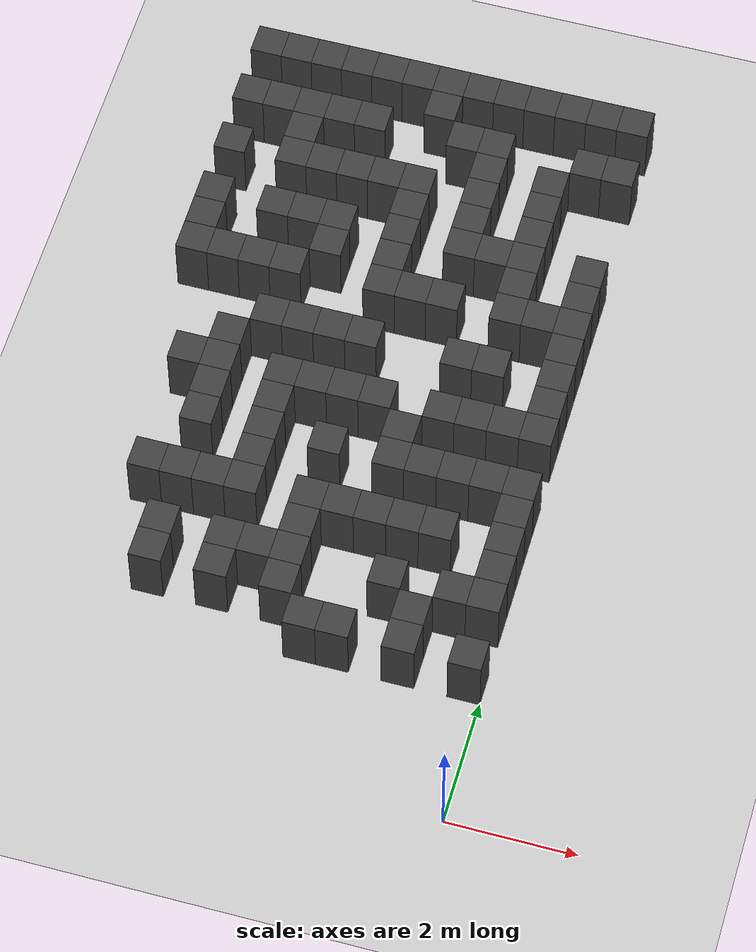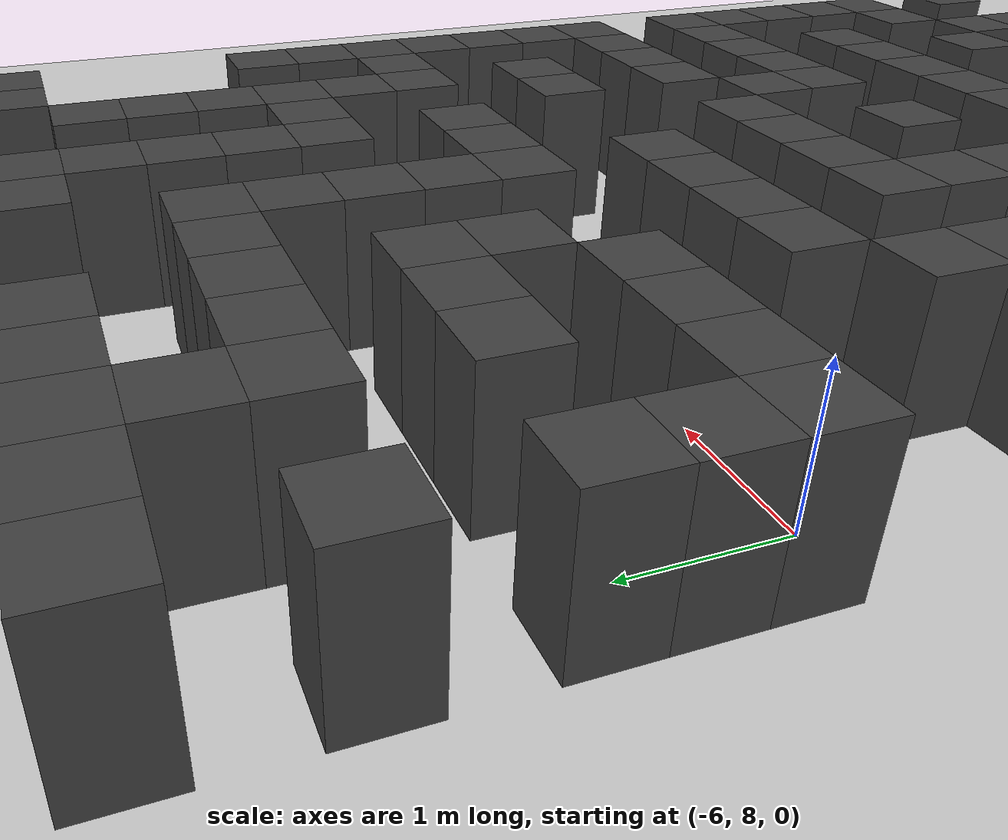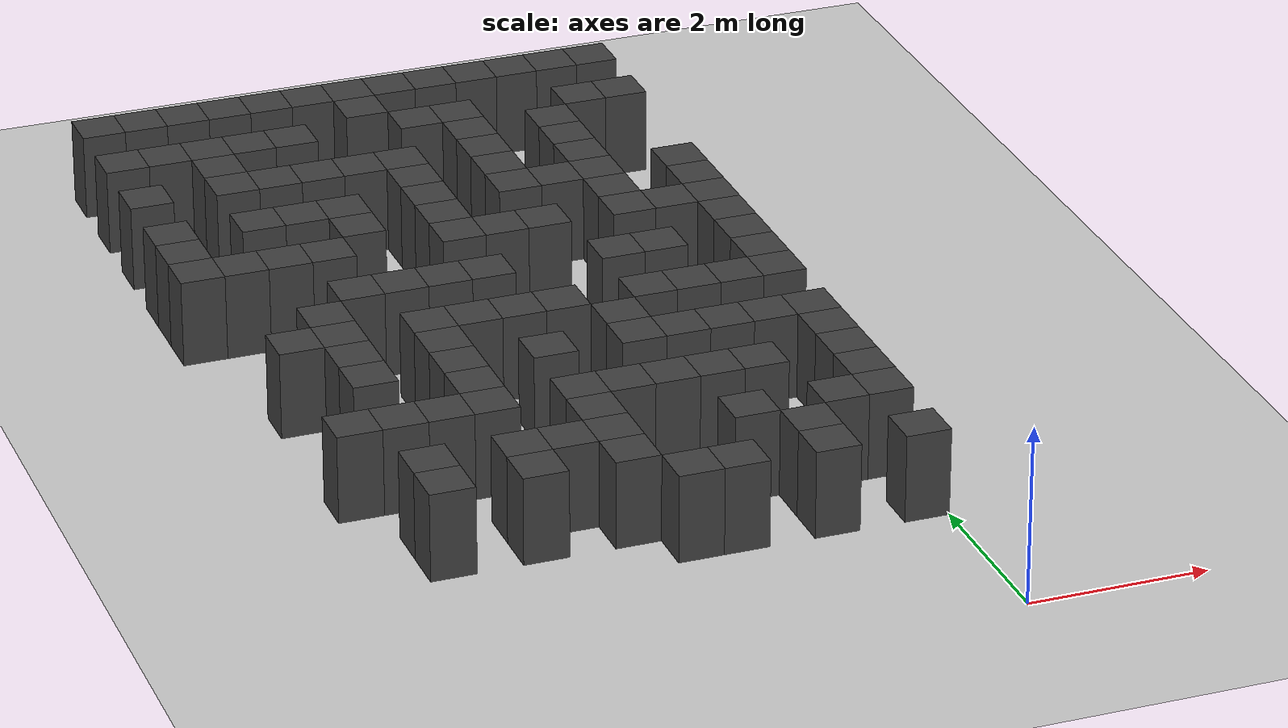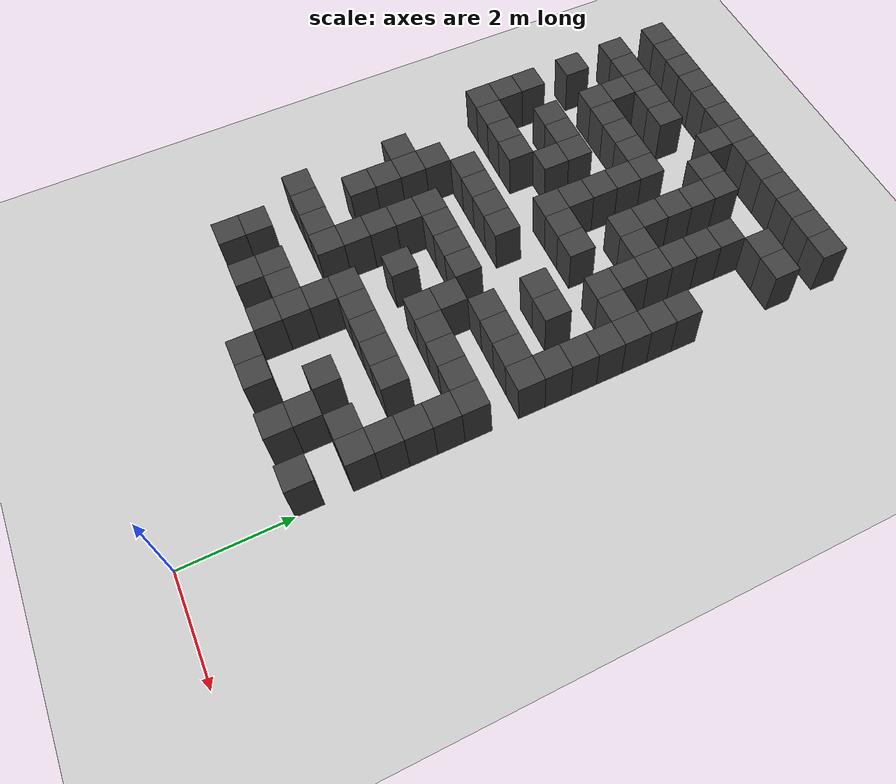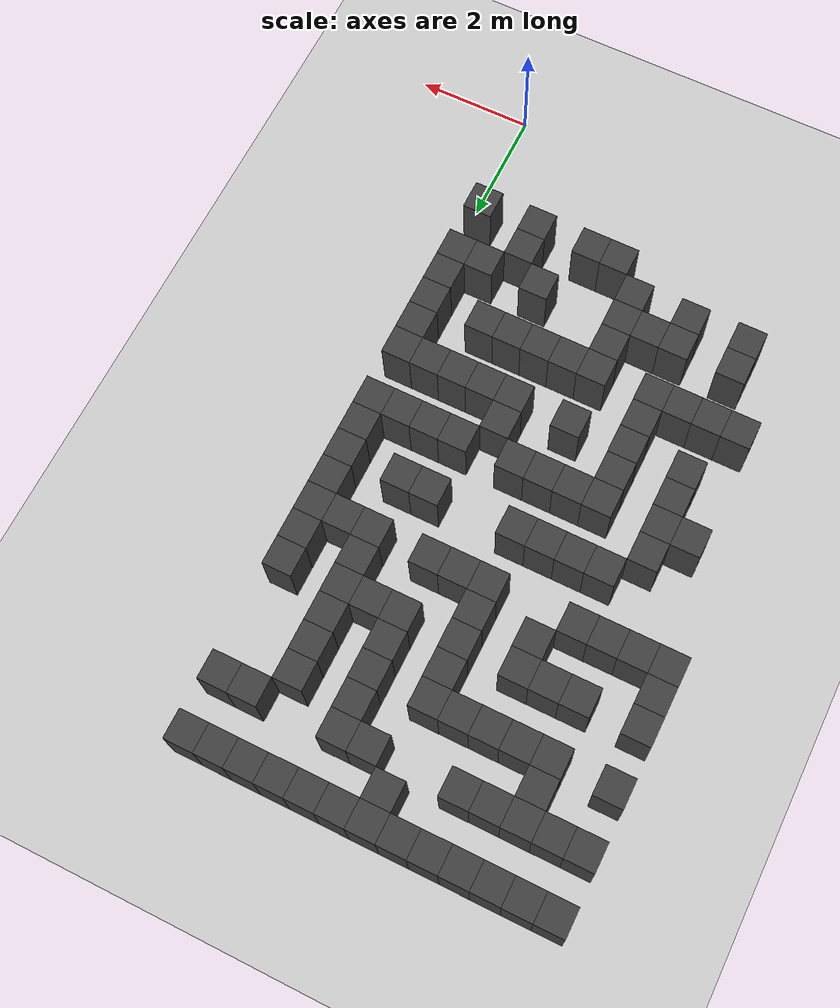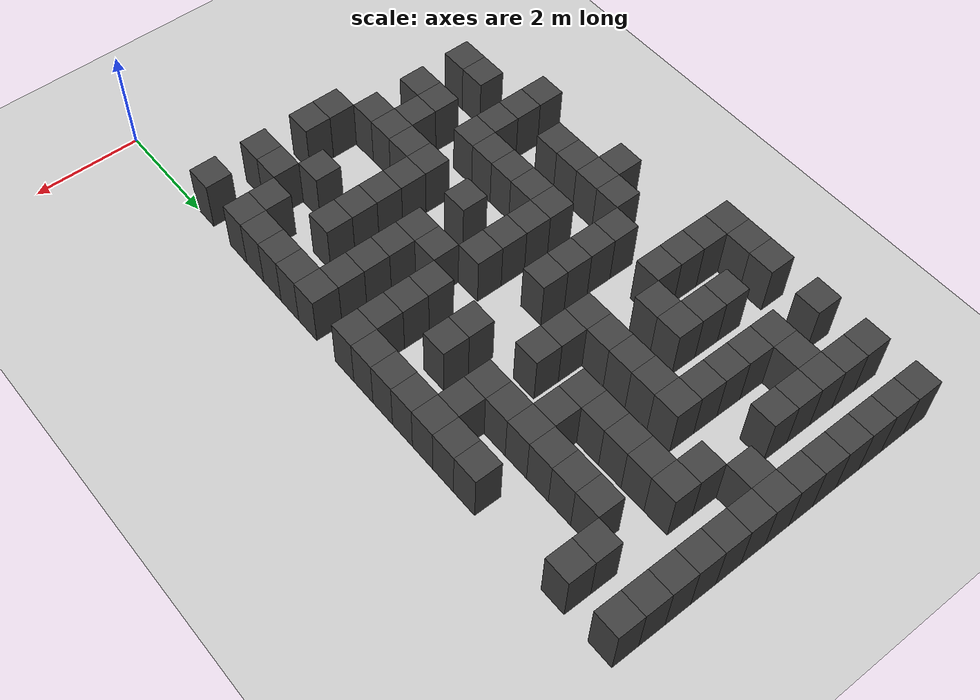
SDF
<sdf version="1.7">
 <world name="map_15497">
  <model name="ground_plane">
   <static>true</static>
   <link name="link">
    <collision name="collision">
     <geometry><plane><normal>0 0 1</normal><size>200 200</size></plane></geometry>
    </collision>
    <visual name="visual">
     <geometry><plane><normal>0 0 1</normal><size>200 200</size></plane></geometry>
     <material><ambient>0.8 0.8 0.8 1</ambient><diffuse>0.8 0.8 0.8 1</diffuse></material>
    </visual>
   </link>
  </model>
  <model name="maze_environment">
   <static>true</static>
   <link name="wall_12">
    <pose>-6.250 12.250 0.500 0 0 0</pose>
    <collision name="col"><geometry><box><size>0.5 0.5 1.0</size></box></geometry></collision>
    <visual name="vis">
     <geometry><box><size>0.5 0.5 1.0</size></box></geometry>
     <material><ambient>0.15 0.15 0.15 1</ambient><diffuse>0.25 0.25 0.25 1</diffuse></material>
    </visual>
   </link>
   <link name="wall_13">
    <pose>-5.750 12.250 0.500 0 0 0</pose>
    <collision name="col"><geometry><box><size>0.5 0.5 1.0</size></box></geometry></collision>
    <visual name="vis">
     <geometry><box><size>0.5 0.5 1.0</size></box></geometry>
     <material><ambient>0.15 0.15 0.15 1</ambient><diffuse>0.25 0.25 0.25 1</diffuse></material>
    </visual>
   </link>
   <link name="wall_14">
    <pose>-5.250 12.250 0.500 0 0 0</pose>
    <collision name="col"><geometry><box><size>0.5 0.5 1.0</size></box></geometry></collision>
    <visual name="vis">
     <geometry><box><size>0.5 0.5 1.0</size></box></geometry>
     <material><ambient>0.15 0.15 0.15 1</ambient><diffuse>0.25 0.25 0.25 1</diffuse></material>
    </visual>
   </link>
   <link name="wall_15">
    <pose>-4.750 12.250 0.500 0 0 0</pose>
    <collision name="col"><geometry><box><size>0.5 0.5 1.0</size></box></geometry></collision>
    <visual name="vis">
     <geometry><box><size>0.5 0.5 1.0</size></box></geometry>
     <material><ambient>0.15 0.15 0.15 1</ambient><diffuse>0.25 0.25 0.25 1</diffuse></material>
    </visual>
   </link>
   <link name="wall_16">
    <pose>-4.250 12.250 0.500 0 0 0</pose>
    <collision name="col"><geometry><box><size>0.5 0.5 1.0</size></box></geometry></collision>
    <visual name="vis">
     <geometry><box><size>0.5 0.5 1.0</size></box></geometry>
     <material><ambient>0.15 0.15 0.15 1</ambient><diffuse>0.25 0.25 0.25 1</diffuse></material>
    </visual>
   </link>
   <link name="wall_17">
    <pose>-3.750 12.250 0.500 0 0 0</pose>
    <collision name="col"><geometry><box><size>0.5 0.5 1.0</size></box></geometry></collision>
    <visual name="vis">
     <geometry><box><size>0.5 0.5 1.0</size></box></geometry>
     <material><ambient>0.15 0.15 0.15 1</ambient><diffuse>0.25 0.25 0.25 1</diffuse></material>
    </visual>
   </link>
   <link name="wall_18">
    <pose>-3.250 12.250 0.500 0 0 0</pose>
    <collision name="col"><geometry><box><size>0.5 0.5 1.0</size></box></geometry></collision>
    <visual name="vis">
     <geometry><box><size>0.5 0.5 1.0</size></box></geometry>
     <material><ambient>0.15 0.15 0.15 1</ambient><diffuse>0.25 0.25 0.25 1</diffuse></material>
    </visual>
   </link>
   <link name="wall_19">
    <pose>-2.750 12.250 0.500 0 0 0</pose>
    <collision name="col"><geometry><box><size>0.5 0.5 1.0</size></box></geometry></collision>
    <visual name="vis">
     <geometry><box><size>0.5 0.5 1.0</size></box></geometry>
     <material><ambient>0.15 0.15 0.15 1</ambient><diffuse>0.25 0.25 0.25 1</diffuse></material>
    </visual>
   </link>
   <link name="wall_20">
    <pose>-2.250 12.250 0.500 0 0 0</pose>
    <collision name="col"><geometry><box><size>0.5 0.5 1.0</size></box></geometry></collision>
    <visual name="vis">
     <geometry><box><size>0.5 0.5 1.0</size></box></geometry>
     <material><ambient>0.15 0.15 0.15 1</ambient><diffuse>0.25 0.25 0.25 1</diffuse></material>
    </visual>
   </link>
   <link name="wall_21">
    <pose>-1.750 12.250 0.500 0 0 0</pose>
    <collision name="col"><geometry><box><size>0.5 0.5 1.0</size></box></geometry></collision>
    <visual name="vis">
     <geometry><box><size>0.5 0.5 1.0</size></box></geometry>
     <material><ambient>0.15 0.15 0.15 1</ambient><diffuse>0.25 0.25 0.25 1</diffuse></material>
    </visual>
   </link>
   <link name="wall_22">
    <pose>-1.250 12.250 0.500 0 0 0</pose>
    <collision name="col"><geometry><box><size>0.5 0.5 1.0</size></box></geometry></collision>
    <visual name="vis">
     <geometry><box><size>0.5 0.5 1.0</size></box></geometry>
     <material><ambient>0.15 0.15 0.15 1</ambient><diffuse>0.25 0.25 0.25 1</diffuse></material>
    </visual>
   </link>
   <link name="wall_23">
    <pose>-0.750 12.250 0.500 0 0 0</pose>
    <collision name="col"><geometry><box><size>0.5 0.5 1.0</size></box></geometry></collision>
    <visual name="vis">
     <geometry><box><size>0.5 0.5 1.0</size></box></geometry>
     <material><ambient>0.15 0.15 0.15 1</ambient><diffuse>0.25 0.25 0.25 1</diffuse></material>
    </visual>
   </link>
   <link name="wall_24">
    <pose>-0.250 12.250 0.500 0 0 0</pose>
    <collision name="col"><geometry><box><size>0.5 0.5 1.0</size></box></geometry></collision>
    <visual name="vis">
     <geometry><box><size>0.5 0.5 1.0</size></box></geometry>
     <material><ambient>0.15 0.15 0.15 1</ambient><diffuse>0.25 0.25 0.25 1</diffuse></material>
    </visual>
   </link>
   <link name="wall_53">
    <pose>-3.250 11.750 0.500 0 0 0</pose>
    <collision name="col"><geometry><box><size>0.5 0.5 1.0</size></box></geometry></collision>
    <visual name="vis">
     <geometry><box><size>0.5 0.5 1.0</size></box></geometry>
     <material><ambient>0.15 0.15 0.15 1</ambient><diffuse>0.25 0.25 0.25 1</diffuse></material>
    </visual>
   </link>
   <link name="wall_66">
    <pose>-6.250 11.250 0.500 0 0 0</pose>
    <collision name="col"><geometry><box><size>0.5 0.5 1.0</size></box></geometry></collision>
    <visual name="vis">
     <geometry><box><size>0.5 0.5 1.0</size></box></geometry>
     <material><ambient>0.15 0.15 0.15 1</ambient><diffuse>0.25 0.25 0.25 1</diffuse></material>
    </visual>
   </link>
   <link name="wall_67">
    <pose>-5.750 11.250 0.500 0 0 0</pose>
    <collision name="col"><geometry><box><size>0.5 0.5 1.0</size></box></geometry></collision>
    <visual name="vis">
     <geometry><box><size>0.5 0.5 1.0</size></box></geometry>
     <material><ambient>0.15 0.15 0.15 1</ambient><diffuse>0.25 0.25 0.25 1</diffuse></material>
    </visual>
   </link>
   <link name="wall_68">
    <pose>-5.250 11.250 0.500 0 0 0</pose>
    <collision name="col"><geometry><box><size>0.5 0.5 1.0</size></box></geometry></collision>
    <visual name="vis">
     <geometry><box><size>0.5 0.5 1.0</size></box></geometry>
     <material><ambient>0.15 0.15 0.15 1</ambient><diffuse>0.25 0.25 0.25 1</diffuse></material>
    </visual>
   </link>
   <link name="wall_69">
    <pose>-4.750 11.250 0.500 0 0 0</pose>
    <collision name="col"><geometry><box><size>0.5 0.5 1.0</size></box></geometry></collision>
    <visual name="vis">
     <geometry><box><size>0.5 0.5 1.0</size></box></geometry>
     <material><ambient>0.15 0.15 0.15 1</ambient><diffuse>0.25 0.25 0.25 1</diffuse></material>
    </visual>
   </link>
   <link name="wall_70">
    <pose>-4.250 11.250 0.500 0 0 0</pose>
    <collision name="col"><geometry><box><size>0.5 0.5 1.0</size></box></geometry></collision>
    <visual name="vis">
     <geometry><box><size>0.5 0.5 1.0</size></box></geometry>
     <material><ambient>0.15 0.15 0.15 1</ambient><diffuse>0.25 0.25 0.25 1</diffuse></material>
    </visual>
   </link>
   <link name="wall_71">
    <pose>-2.750 11.250 0.500 0 0 0</pose>
    <collision name="col"><geometry><box><size>0.5 0.5 1.0</size></box></geometry></collision>
    <visual name="vis">
     <geometry><box><size>0.5 0.5 1.0</size></box></geometry>
     <material><ambient>0.15 0.15 0.15 1</ambient><diffuse>0.25 0.25 0.25 1</diffuse></material>
    </visual>
   </link>
   <link name="wall_72">
    <pose>-2.250 11.250 0.500 0 0 0</pose>
    <collision name="col"><geometry><box><size>0.5 0.5 1.0</size></box></geometry></collision>
    <visual name="vis">
     <geometry><box><size>0.5 0.5 1.0</size></box></geometry>
     <material><ambient>0.15 0.15 0.15 1</ambient><diffuse>0.25 0.25 0.25 1</diffuse></material>
    </visual>
   </link>
   <link name="wall_73">
    <pose>-0.750 11.250 0.500 0 0 0</pose>
    <collision name="col"><geometry><box><size>0.5 0.5 1.0</size></box></geometry></collision>
    <visual name="vis">
     <geometry><box><size>0.5 0.5 1.0</size></box></geometry>
     <material><ambient>0.15 0.15 0.15 1</ambient><diffuse>0.25 0.25 0.25 1</diffuse></material>
    </visual>
   </link>
   <link name="wall_74">
    <pose>-0.250 11.250 0.500 0 0 0</pose>
    <collision name="col"><geometry><box><size>0.5 0.5 1.0</size></box></geometry></collision>
    <visual name="vis">
     <geometry><box><size>0.5 0.5 1.0</size></box></geometry>
     <material><ambient>0.15 0.15 0.15 1</ambient><diffuse>0.25 0.25 0.25 1</diffuse></material>
    </visual>
   </link>
   <link name="wall_94">
    <pose>-5.250 10.750 0.500 0 0 0</pose>
    <collision name="col"><geometry><box><size>0.5 0.5 1.0</size></box></geometry></collision>
    <visual name="vis">
     <geometry><box><size>0.5 0.5 1.0</size></box></geometry>
     <material><ambient>0.15 0.15 0.15 1</ambient><diffuse>0.25 0.25 0.25 1</diffuse></material>
    </visual>
   </link>
   <link name="wall_95">
    <pose>-2.250 10.750 0.500 0 0 0</pose>
    <collision name="col"><geometry><box><size>0.5 0.5 1.0</size></box></geometry></collision>
    <visual name="vis">
     <geometry><box><size>0.5 0.5 1.0</size></box></geometry>
     <material><ambient>0.15 0.15 0.15 1</ambient><diffuse>0.25 0.25 0.25 1</diffuse></material>
    </visual>
   </link>
   <link name="wall_96">
    <pose>-1.250 10.750 0.500 0 0 0</pose>
    <collision name="col"><geometry><box><size>0.5 0.5 1.0</size></box></geometry></collision>
    <visual name="vis">
     <geometry><box><size>0.5 0.5 1.0</size></box></geometry>
     <material><ambient>0.15 0.15 0.15 1</ambient><diffuse>0.25 0.25 0.25 1</diffuse></material>
    </visual>
   </link>
   <link name="wall_115">
    <pose>-6.250 10.250 0.500 0 0 0</pose>
    <collision name="col"><geometry><box><size>0.5 0.5 1.0</size></box></geometry></collision>
    <visual name="vis">
     <geometry><box><size>0.5 0.5 1.0</size></box></geometry>
     <material><ambient>0.15 0.15 0.15 1</ambient><diffuse>0.25 0.25 0.25 1</diffuse></material>
    </visual>
   </link>
   <link name="wall_116">
    <pose>-5.250 10.250 0.500 0 0 0</pose>
    <collision name="col"><geometry><box><size>0.5 0.5 1.0</size></box></geometry></collision>
    <visual name="vis">
     <geometry><box><size>0.5 0.5 1.0</size></box></geometry>
     <material><ambient>0.15 0.15 0.15 1</ambient><diffuse>0.25 0.25 0.25 1</diffuse></material>
    </visual>
   </link>
   <link name="wall_117">
    <pose>-4.750 10.250 0.500 0 0 0</pose>
    <collision name="col"><geometry><box><size>0.5 0.5 1.0</size></box></geometry></collision>
    <visual name="vis">
     <geometry><box><size>0.5 0.5 1.0</size></box></geometry>
     <material><ambient>0.15 0.15 0.15 1</ambient><diffuse>0.25 0.25 0.25 1</diffuse></material>
    </visual>
   </link>
   <link name="wall_118">
    <pose>-4.250 10.250 0.500 0 0 0</pose>
    <collision name="col"><geometry><box><size>0.5 0.5 1.0</size></box></geometry></collision>
    <visual name="vis">
     <geometry><box><size>0.5 0.5 1.0</size></box></geometry>
     <material><ambient>0.15 0.15 0.15 1</ambient><diffuse>0.25 0.25 0.25 1</diffuse></material>
    </visual>
   </link>
   <link name="wall_119">
    <pose>-3.750 10.250 0.500 0 0 0</pose>
    <collision name="col"><geometry><box><size>0.5 0.5 1.0</size></box></geometry></collision>
    <visual name="vis">
     <geometry><box><size>0.5 0.5 1.0</size></box></geometry>
     <material><ambient>0.15 0.15 0.15 1</ambient><diffuse>0.25 0.25 0.25 1</diffuse></material>
    </visual>
   </link>
   <link name="wall_120">
    <pose>-3.250 10.250 0.500 0 0 0</pose>
    <collision name="col"><geometry><box><size>0.5 0.5 1.0</size></box></geometry></collision>
    <visual name="vis">
     <geometry><box><size>0.5 0.5 1.0</size></box></geometry>
     <material><ambient>0.15 0.15 0.15 1</ambient><diffuse>0.25 0.25 0.25 1</diffuse></material>
    </visual>
   </link>
   <link name="wall_121">
    <pose>-2.250 10.250 0.500 0 0 0</pose>
    <collision name="col"><geometry><box><size>0.5 0.5 1.0</size></box></geometry></collision>
    <visual name="vis">
     <geometry><box><size>0.5 0.5 1.0</size></box></geometry>
     <material><ambient>0.15 0.15 0.15 1</ambient><diffuse>0.25 0.25 0.25 1</diffuse></material>
    </visual>
   </link>
   <link name="wall_122">
    <pose>-1.250 10.250 0.500 0 0 0</pose>
    <collision name="col"><geometry><box><size>0.5 0.5 1.0</size></box></geometry></collision>
    <visual name="vis">
     <geometry><box><size>0.5 0.5 1.0</size></box></geometry>
     <material><ambient>0.15 0.15 0.15 1</ambient><diffuse>0.25 0.25 0.25 1</diffuse></material>
    </visual>
   </link>
   <link name="wall_140">
    <pose>-3.250 9.750 0.500 0 0 0</pose>
    <collision name="col"><geometry><box><size>0.5 0.5 1.0</size></box></geometry></collision>
    <visual name="vis">
     <geometry><box><size>0.5 0.5 1.0</size></box></geometry>
     <material><ambient>0.15 0.15 0.15 1</ambient><diffuse>0.25 0.25 0.25 1</diffuse></material>
    </visual>
   </link>
   <link name="wall_141">
    <pose>-2.250 9.750 0.500 0 0 0</pose>
    <collision name="col"><geometry><box><size>0.5 0.5 1.0</size></box></geometry></collision>
    <visual name="vis">
     <geometry><box><size>0.5 0.5 1.0</size></box></geometry>
     <material><ambient>0.15 0.15 0.15 1</ambient><diffuse>0.25 0.25 0.25 1</diffuse></material>
    </visual>
   </link>
   <link name="wall_142">
    <pose>-1.250 9.750 0.500 0 0 0</pose>
    <collision name="col"><geometry><box><size>0.5 0.5 1.0</size></box></geometry></collision>
    <visual name="vis">
     <geometry><box><size>0.5 0.5 1.0</size></box></geometry>
     <material><ambient>0.15 0.15 0.15 1</ambient><diffuse>0.25 0.25 0.25 1</diffuse></material>
    </visual>
   </link>
   <link name="wall_160">
    <pose>-6.250 9.250 0.500 0 0 0</pose>
    <collision name="col"><geometry><box><size>0.5 0.5 1.0</size></box></geometry></collision>
    <visual name="vis">
     <geometry><box><size>0.5 0.5 1.0</size></box></geometry>
     <material><ambient>0.15 0.15 0.15 1</ambient><diffuse>0.25 0.25 0.25 1</diffuse></material>
    </visual>
   </link>
   <link name="wall_161">
    <pose>-5.250 9.250 0.500 0 0 0</pose>
    <collision name="col"><geometry><box><size>0.5 0.5 1.0</size></box></geometry></collision>
    <visual name="vis">
     <geometry><box><size>0.5 0.5 1.0</size></box></geometry>
     <material><ambient>0.15 0.15 0.15 1</ambient><diffuse>0.25 0.25 0.25 1</diffuse></material>
    </visual>
   </link>
   <link name="wall_162">
    <pose>-4.750 9.250 0.500 0 0 0</pose>
    <collision name="col"><geometry><box><size>0.5 0.5 1.0</size></box></geometry></collision>
    <visual name="vis">
     <geometry><box><size>0.5 0.5 1.0</size></box></geometry>
     <material><ambient>0.15 0.15 0.15 1</ambient><diffuse>0.25 0.25 0.25 1</diffuse></material>
    </visual>
   </link>
   <link name="wall_163">
    <pose>-4.250 9.250 0.500 0 0 0</pose>
    <collision name="col"><geometry><box><size>0.5 0.5 1.0</size></box></geometry></collision>
    <visual name="vis">
     <geometry><box><size>0.5 0.5 1.0</size></box></geometry>
     <material><ambient>0.15 0.15 0.15 1</ambient><diffuse>0.25 0.25 0.25 1</diffuse></material>
    </visual>
   </link>
   <link name="wall_164">
    <pose>-3.250 9.250 0.500 0 0 0</pose>
    <collision name="col"><geometry><box><size>0.5 0.5 1.0</size></box></geometry></collision>
    <visual name="vis">
     <geometry><box><size>0.5 0.5 1.0</size></box></geometry>
     <material><ambient>0.15 0.15 0.15 1</ambient><diffuse>0.25 0.25 0.25 1</diffuse></material>
    </visual>
   </link>
   <link name="wall_165">
    <pose>-2.250 9.250 0.500 0 0 0</pose>
    <collision name="col"><geometry><box><size>0.5 0.5 1.0</size></box></geometry></collision>
    <visual name="vis">
     <geometry><box><size>0.5 0.5 1.0</size></box></geometry>
     <material><ambient>0.15 0.15 0.15 1</ambient><diffuse>0.25 0.25 0.25 1</diffuse></material>
    </visual>
   </link>
   <link name="wall_166">
    <pose>-1.750 9.250 0.500 0 0 0</pose>
    <collision name="col"><geometry><box><size>0.5 0.5 1.0</size></box></geometry></collision>
    <visual name="vis">
     <geometry><box><size>0.5 0.5 1.0</size></box></geometry>
     <material><ambient>0.15 0.15 0.15 1</ambient><diffuse>0.25 0.25 0.25 1</diffuse></material>
    </visual>
   </link>
   <link name="wall_167">
    <pose>-1.250 9.250 0.500 0 0 0</pose>
    <collision name="col"><geometry><box><size>0.5 0.5 1.0</size></box></geometry></collision>
    <visual name="vis">
     <geometry><box><size>0.5 0.5 1.0</size></box></geometry>
     <material><ambient>0.15 0.15 0.15 1</ambient><diffuse>0.25 0.25 0.25 1</diffuse></material>
    </visual>
   </link>
   <link name="wall_168">
    <pose>-0.250 9.250 0.500 0 0 0</pose>
    <collision name="col"><geometry><box><size>0.5 0.5 1.0</size></box></geometry></collision>
    <visual name="vis">
     <geometry><box><size>0.5 0.5 1.0</size></box></geometry>
     <material><ambient>0.15 0.15 0.15 1</ambient><diffuse>0.25 0.25 0.25 1</diffuse></material>
    </visual>
   </link>
   <link name="wall_185">
    <pose>-6.250 8.750 0.500 0 0 0</pose>
    <collision name="col"><geometry><box><size>0.5 0.5 1.0</size></box></geometry></collision>
    <visual name="vis">
     <geometry><box><size>0.5 0.5 1.0</size></box></geometry>
     <material><ambient>0.15 0.15 0.15 1</ambient><diffuse>0.25 0.25 0.25 1</diffuse></material>
    </visual>
   </link>
   <link name="wall_186">
    <pose>-4.250 8.750 0.500 0 0 0</pose>
    <collision name="col"><geometry><box><size>0.5 0.5 1.0</size></box></geometry></collision>
    <visual name="vis">
     <geometry><box><size>0.5 0.5 1.0</size></box></geometry>
     <material><ambient>0.15 0.15 0.15 1</ambient><diffuse>0.25 0.25 0.25 1</diffuse></material>
    </visual>
   </link>
   <link name="wall_187">
    <pose>-3.250 8.750 0.500 0 0 0</pose>
    <collision name="col"><geometry><box><size>0.5 0.5 1.0</size></box></geometry></collision>
    <visual name="vis">
     <geometry><box><size>0.5 0.5 1.0</size></box></geometry>
     <material><ambient>0.15 0.15 0.15 1</ambient><diffuse>0.25 0.25 0.25 1</diffuse></material>
    </visual>
   </link>
   <link name="wall_188">
    <pose>-1.250 8.750 0.500 0 0 0</pose>
    <collision name="col"><geometry><box><size>0.5 0.5 1.0</size></box></geometry></collision>
    <visual name="vis">
     <geometry><box><size>0.5 0.5 1.0</size></box></geometry>
     <material><ambient>0.15 0.15 0.15 1</ambient><diffuse>0.25 0.25 0.25 1</diffuse></material>
    </visual>
   </link>
   <link name="wall_189">
    <pose>-0.250 8.750 0.500 0 0 0</pose>
    <collision name="col"><geometry><box><size>0.5 0.5 1.0</size></box></geometry></collision>
    <visual name="vis">
     <geometry><box><size>0.5 0.5 1.0</size></box></geometry>
     <material><ambient>0.15 0.15 0.15 1</ambient><diffuse>0.25 0.25 0.25 1</diffuse></material>
    </visual>
   </link>
   <link name="wall_202">
    <pose>-6.250 8.250 0.500 0 0 0</pose>
    <collision name="col"><geometry><box><size>0.5 0.5 1.0</size></box></geometry></collision>
    <visual name="vis">
     <geometry><box><size>0.5 0.5 1.0</size></box></geometry>
     <material><ambient>0.15 0.15 0.15 1</ambient><diffuse>0.25 0.25 0.25 1</diffuse></material>
    </visual>
   </link>
   <link name="wall_203">
    <pose>-5.750 8.250 0.500 0 0 0</pose>
    <collision name="col"><geometry><box><size>0.5 0.5 1.0</size></box></geometry></collision>
    <visual name="vis">
     <geometry><box><size>0.5 0.5 1.0</size></box></geometry>
     <material><ambient>0.15 0.15 0.15 1</ambient><diffuse>0.25 0.25 0.25 1</diffuse></material>
    </visual>
   </link>
   <link name="wall_204">
    <pose>-5.250 8.250 0.500 0 0 0</pose>
    <collision name="col"><geometry><box><size>0.5 0.5 1.0</size></box></geometry></collision>
    <visual name="vis">
     <geometry><box><size>0.5 0.5 1.0</size></box></geometry>
     <material><ambient>0.15 0.15 0.15 1</ambient><diffuse>0.25 0.25 0.25 1</diffuse></material>
    </visual>
   </link>
   <link name="wall_205">
    <pose>-4.750 8.250 0.500 0 0 0</pose>
    <collision name="col"><geometry><box><size>0.5 0.5 1.0</size></box></geometry></collision>
    <visual name="vis">
     <geometry><box><size>0.5 0.5 1.0</size></box></geometry>
     <material><ambient>0.15 0.15 0.15 1</ambient><diffuse>0.25 0.25 0.25 1</diffuse></material>
    </visual>
   </link>
   <link name="wall_206">
    <pose>-3.250 8.250 0.500 0 0 0</pose>
    <collision name="col"><geometry><box><size>0.5 0.5 1.0</size></box></geometry></collision>
    <visual name="vis">
     <geometry><box><size>0.5 0.5 1.0</size></box></geometry>
     <material><ambient>0.15 0.15 0.15 1</ambient><diffuse>0.25 0.25 0.25 1</diffuse></material>
    </visual>
   </link>
   <link name="wall_207">
    <pose>-2.750 8.250 0.500 0 0 0</pose>
    <collision name="col"><geometry><box><size>0.5 0.5 1.0</size></box></geometry></collision>
    <visual name="vis">
     <geometry><box><size>0.5 0.5 1.0</size></box></geometry>
     <material><ambient>0.15 0.15 0.15 1</ambient><diffuse>0.25 0.25 0.25 1</diffuse></material>
    </visual>
   </link>
   <link name="wall_208">
    <pose>-2.250 8.250 0.500 0 0 0</pose>
    <collision name="col"><geometry><box><size>0.5 0.5 1.0</size></box></geometry></collision>
    <visual name="vis">
     <geometry><box><size>0.5 0.5 1.0</size></box></geometry>
     <material><ambient>0.15 0.15 0.15 1</ambient><diffuse>0.25 0.25 0.25 1</diffuse></material>
    </visual>
   </link>
   <link name="wall_209">
    <pose>-1.250 8.250 0.500 0 0 0</pose>
    <collision name="col"><geometry><box><size>0.5 0.5 1.0</size></box></geometry></collision>
    <visual name="vis">
     <geometry><box><size>0.5 0.5 1.0</size></box></geometry>
     <material><ambient>0.15 0.15 0.15 1</ambient><diffuse>0.25 0.25 0.25 1</diffuse></material>
    </visual>
   </link>
   <link name="wall_210">
    <pose>-0.750 8.250 0.500 0 0 0</pose>
    <collision name="col"><geometry><box><size>0.5 0.5 1.0</size></box></geometry></collision>
    <visual name="vis">
     <geometry><box><size>0.5 0.5 1.0</size></box></geometry>
     <material><ambient>0.15 0.15 0.15 1</ambient><diffuse>0.25 0.25 0.25 1</diffuse></material>
    </visual>
   </link>
   <link name="wall_211">
    <pose>-0.250 8.250 0.500 0 0 0</pose>
    <collision name="col"><geometry><box><size>0.5 0.5 1.0</size></box></geometry></collision>
    <visual name="vis">
     <geometry><box><size>0.5 0.5 1.0</size></box></geometry>
     <material><ambient>0.15 0.15 0.15 1</ambient><diffuse>0.25 0.25 0.25 1</diffuse></material>
    </visual>
   </link>
   <link name="wall_232">
    <pose>-0.250 7.750 0.500 0 0 0</pose>
    <collision name="col"><geometry><box><size>0.5 0.5 1.0</size></box></geometry></collision>
    <visual name="vis">
     <geometry><box><size>0.5 0.5 1.0</size></box></geometry>
     <material><ambient>0.15 0.15 0.15 1</ambient><diffuse>0.25 0.25 0.25 1</diffuse></material>
    </visual>
   </link>
   <link name="wall_246">
    <pose>-4.750 7.250 0.500 0 0 0</pose>
    <collision name="col"><geometry><box><size>0.5 0.5 1.0</size></box></geometry></collision>
    <visual name="vis">
     <geometry><box><size>0.5 0.5 1.0</size></box></geometry>
     <material><ambient>0.15 0.15 0.15 1</ambient><diffuse>0.25 0.25 0.25 1</diffuse></material>
    </visual>
   </link>
   <link name="wall_247">
    <pose>-4.250 7.250 0.500 0 0 0</pose>
    <collision name="col"><geometry><box><size>0.5 0.5 1.0</size></box></geometry></collision>
    <visual name="vis">
     <geometry><box><size>0.5 0.5 1.0</size></box></geometry>
     <material><ambient>0.15 0.15 0.15 1</ambient><diffuse>0.25 0.25 0.25 1</diffuse></material>
    </visual>
   </link>
   <link name="wall_248">
    <pose>-3.750 7.250 0.500 0 0 0</pose>
    <collision name="col"><geometry><box><size>0.5 0.5 1.0</size></box></geometry></collision>
    <visual name="vis">
     <geometry><box><size>0.5 0.5 1.0</size></box></geometry>
     <material><ambient>0.15 0.15 0.15 1</ambient><diffuse>0.25 0.25 0.25 1</diffuse></material>
    </visual>
   </link>
   <link name="wall_249">
    <pose>-3.250 7.250 0.500 0 0 0</pose>
    <collision name="col"><geometry><box><size>0.5 0.5 1.0</size></box></geometry></collision>
    <visual name="vis">
     <geometry><box><size>0.5 0.5 1.0</size></box></geometry>
     <material><ambient>0.15 0.15 0.15 1</ambient><diffuse>0.25 0.25 0.25 1</diffuse></material>
    </visual>
   </link>
   <link name="wall_250">
    <pose>-1.750 7.250 0.500 0 0 0</pose>
    <collision name="col"><geometry><box><size>0.5 0.5 1.0</size></box></geometry></collision>
    <visual name="vis">
     <geometry><box><size>0.5 0.5 1.0</size></box></geometry>
     <material><ambient>0.15 0.15 0.15 1</ambient><diffuse>0.25 0.25 0.25 1</diffuse></material>
    </visual>
   </link>
   <link name="wall_251">
    <pose>-1.250 7.250 0.500 0 0 0</pose>
    <collision name="col"><geometry><box><size>0.5 0.5 1.0</size></box></geometry></collision>
    <visual name="vis">
     <geometry><box><size>0.5 0.5 1.0</size></box></geometry>
     <material><ambient>0.15 0.15 0.15 1</ambient><diffuse>0.25 0.25 0.25 1</diffuse></material>
    </visual>
   </link>
   <link name="wall_252">
    <pose>-0.250 7.250 0.500 0 0 0</pose>
    <collision name="col"><geometry><box><size>0.5 0.5 1.0</size></box></geometry></collision>
    <visual name="vis">
     <geometry><box><size>0.5 0.5 1.0</size></box></geometry>
     <material><ambient>0.15 0.15 0.15 1</ambient><diffuse>0.25 0.25 0.25 1</diffuse></material>
    </visual>
   </link>
   <link name="wall_276">
    <pose>-5.250 6.750 0.500 0 0 0</pose>
    <collision name="col"><geometry><box><size>0.5 0.5 1.0</size></box></geometry></collision>
    <visual name="vis">
     <geometry><box><size>0.5 0.5 1.0</size></box></geometry>
     <material><ambient>0.15 0.15 0.15 1</ambient><diffuse>0.25 0.25 0.25 1</diffuse></material>
    </visual>
   </link>
   <link name="wall_277">
    <pose>-0.250 6.750 0.500 0 0 0</pose>
    <collision name="col"><geometry><box><size>0.5 0.5 1.0</size></box></geometry></collision>
    <visual name="vis">
     <geometry><box><size>0.5 0.5 1.0</size></box></geometry>
     <material><ambient>0.15 0.15 0.15 1</ambient><diffuse>0.25 0.25 0.25 1</diffuse></material>
    </visual>
   </link>
   <link name="wall_294">
    <pose>-5.750 6.250 0.500 0 0 0</pose>
    <collision name="col"><geometry><box><size>0.5 0.5 1.0</size></box></geometry></collision>
    <visual name="vis">
     <geometry><box><size>0.5 0.5 1.0</size></box></geometry>
     <material><ambient>0.15 0.15 0.15 1</ambient><diffuse>0.25 0.25 0.25 1</diffuse></material>
    </visual>
   </link>
   <link name="wall_295">
    <pose>-5.250 6.250 0.500 0 0 0</pose>
    <collision name="col"><geometry><box><size>0.5 0.5 1.0</size></box></geometry></collision>
    <visual name="vis">
     <geometry><box><size>0.5 0.5 1.0</size></box></geometry>
     <material><ambient>0.15 0.15 0.15 1</ambient><diffuse>0.25 0.25 0.25 1</diffuse></material>
    </visual>
   </link>
   <link name="wall_296">
    <pose>-4.250 6.250 0.500 0 0 0</pose>
    <collision name="col"><geometry><box><size>0.5 0.5 1.0</size></box></geometry></collision>
    <visual name="vis">
     <geometry><box><size>0.5 0.5 1.0</size></box></geometry>
     <material><ambient>0.15 0.15 0.15 1</ambient><diffuse>0.25 0.25 0.25 1</diffuse></material>
    </visual>
   </link>
   <link name="wall_297">
    <pose>-3.750 6.250 0.500 0 0 0</pose>
    <collision name="col"><geometry><box><size>0.5 0.5 1.0</size></box></geometry></collision>
    <visual name="vis">
     <geometry><box><size>0.5 0.5 1.0</size></box></geometry>
     <material><ambient>0.15 0.15 0.15 1</ambient><diffuse>0.25 0.25 0.25 1</diffuse></material>
    </visual>
   </link>
   <link name="wall_298">
    <pose>-3.250 6.250 0.500 0 0 0</pose>
    <collision name="col"><geometry><box><size>0.5 0.5 1.0</size></box></geometry></collision>
    <visual name="vis">
     <geometry><box><size>0.5 0.5 1.0</size></box></geometry>
     <material><ambient>0.15 0.15 0.15 1</ambient><diffuse>0.25 0.25 0.25 1</diffuse></material>
    </visual>
   </link>
   <link name="wall_299">
    <pose>-2.750 6.250 0.500 0 0 0</pose>
    <collision name="col"><geometry><box><size>0.5 0.5 1.0</size></box></geometry></collision>
    <visual name="vis">
     <geometry><box><size>0.5 0.5 1.0</size></box></geometry>
     <material><ambient>0.15 0.15 0.15 1</ambient><diffuse>0.25 0.25 0.25 1</diffuse></material>
    </visual>
   </link>
   <link name="wall_300">
    <pose>-1.750 6.250 0.500 0 0 0</pose>
    <collision name="col"><geometry><box><size>0.5 0.5 1.0</size></box></geometry></collision>
    <visual name="vis">
     <geometry><box><size>0.5 0.5 1.0</size></box></geometry>
     <material><ambient>0.15 0.15 0.15 1</ambient><diffuse>0.25 0.25 0.25 1</diffuse></material>
    </visual>
   </link>
   <link name="wall_301">
    <pose>-1.250 6.250 0.500 0 0 0</pose>
    <collision name="col"><geometry><box><size>0.5 0.5 1.0</size></box></geometry></collision>
    <visual name="vis">
     <geometry><box><size>0.5 0.5 1.0</size></box></geometry>
     <material><ambient>0.15 0.15 0.15 1</ambient><diffuse>0.25 0.25 0.25 1</diffuse></material>
    </visual>
   </link>
   <link name="wall_302">
    <pose>-0.750 6.250 0.500 0 0 0</pose>
    <collision name="col"><geometry><box><size>0.5 0.5 1.0</size></box></geometry></collision>
    <visual name="vis">
     <geometry><box><size>0.5 0.5 1.0</size></box></geometry>
     <material><ambient>0.15 0.15 0.15 1</ambient><diffuse>0.25 0.25 0.25 1</diffuse></material>
    </visual>
   </link>
   <link name="wall_303">
    <pose>-0.250 6.250 0.500 0 0 0</pose>
    <collision name="col"><geometry><box><size>0.5 0.5 1.0</size></box></geometry></collision>
    <visual name="vis">
     <geometry><box><size>0.5 0.5 1.0</size></box></geometry>
     <material><ambient>0.15 0.15 0.15 1</ambient><diffuse>0.25 0.25 0.25 1</diffuse></material>
    </visual>
   </link>
   <link name="wall_324">
    <pose>-5.250 5.750 0.500 0 0 0</pose>
    <collision name="col"><geometry><box><size>0.5 0.5 1.0</size></box></geometry></collision>
    <visual name="vis">
     <geometry><box><size>0.5 0.5 1.0</size></box></geometry>
     <material><ambient>0.15 0.15 0.15 1</ambient><diffuse>0.25 0.25 0.25 1</diffuse></material>
    </visual>
   </link>
   <link name="wall_325">
    <pose>-4.250 5.750 0.500 0 0 0</pose>
    <collision name="col"><geometry><box><size>0.5 0.5 1.0</size></box></geometry></collision>
    <visual name="vis">
     <geometry><box><size>0.5 0.5 1.0</size></box></geometry>
     <material><ambient>0.15 0.15 0.15 1</ambient><diffuse>0.25 0.25 0.25 1</diffuse></material>
    </visual>
   </link>
   <link name="wall_326">
    <pose>-2.250 5.750 0.500 0 0 0</pose>
    <collision name="col"><geometry><box><size>0.5 0.5 1.0</size></box></geometry></collision>
    <visual name="vis">
     <geometry><box><size>0.5 0.5 1.0</size></box></geometry>
     <material><ambient>0.15 0.15 0.15 1</ambient><diffuse>0.25 0.25 0.25 1</diffuse></material>
    </visual>
   </link>
   <link name="wall_341">
    <pose>-5.250 5.250 0.500 0 0 0</pose>
    <collision name="col"><geometry><box><size>0.5 0.5 1.0</size></box></geometry></collision>
    <visual name="vis">
     <geometry><box><size>0.5 0.5 1.0</size></box></geometry>
     <material><ambient>0.15 0.15 0.15 1</ambient><diffuse>0.25 0.25 0.25 1</diffuse></material>
    </visual>
   </link>
   <link name="wall_342">
    <pose>-4.250 5.250 0.500 0 0 0</pose>
    <collision name="col"><geometry><box><size>0.5 0.5 1.0</size></box></geometry></collision>
    <visual name="vis">
     <geometry><box><size>0.5 0.5 1.0</size></box></geometry>
     <material><ambient>0.15 0.15 0.15 1</ambient><diffuse>0.25 0.25 0.25 1</diffuse></material>
    </visual>
   </link>
   <link name="wall_343">
    <pose>-3.250 5.250 0.500 0 0 0</pose>
    <collision name="col"><geometry><box><size>0.5 0.5 1.0</size></box></geometry></collision>
    <visual name="vis">
     <geometry><box><size>0.5 0.5 1.0</size></box></geometry>
     <material><ambient>0.15 0.15 0.15 1</ambient><diffuse>0.25 0.25 0.25 1</diffuse></material>
    </visual>
   </link>
   <link name="wall_344">
    <pose>-2.250 5.250 0.500 0 0 0</pose>
    <collision name="col"><geometry><box><size>0.5 0.5 1.0</size></box></geometry></collision>
    <visual name="vis">
     <geometry><box><size>0.5 0.5 1.0</size></box></geometry>
     <material><ambient>0.15 0.15 0.15 1</ambient><diffuse>0.25 0.25 0.25 1</diffuse></material>
    </visual>
   </link>
   <link name="wall_345">
    <pose>-1.750 5.250 0.500 0 0 0</pose>
    <collision name="col"><geometry><box><size>0.5 0.5 1.0</size></box></geometry></collision>
    <visual name="vis">
     <geometry><box><size>0.5 0.5 1.0</size></box></geometry>
     <material><ambient>0.15 0.15 0.15 1</ambient><diffuse>0.25 0.25 0.25 1</diffuse></material>
    </visual>
   </link>
   <link name="wall_346">
    <pose>-1.250 5.250 0.500 0 0 0</pose>
    <collision name="col"><geometry><box><size>0.5 0.5 1.0</size></box></geometry></collision>
    <visual name="vis">
     <geometry><box><size>0.5 0.5 1.0</size></box></geometry>
     <material><ambient>0.15 0.15 0.15 1</ambient><diffuse>0.25 0.25 0.25 1</diffuse></material>
    </visual>
   </link>
   <link name="wall_347">
    <pose>-0.750 5.250 0.500 0 0 0</pose>
    <collision name="col"><geometry><box><size>0.5 0.5 1.0</size></box></geometry></collision>
    <visual name="vis">
     <geometry><box><size>0.5 0.5 1.0</size></box></geometry>
     <material><ambient>0.15 0.15 0.15 1</ambient><diffuse>0.25 0.25 0.25 1</diffuse></material>
    </visual>
   </link>
   <link name="wall_348">
    <pose>-0.250 5.250 0.500 0 0 0</pose>
    <collision name="col"><geometry><box><size>0.5 0.5 1.0</size></box></geometry></collision>
    <visual name="vis">
     <geometry><box><size>0.5 0.5 1.0</size></box></geometry>
     <material><ambient>0.15 0.15 0.15 1</ambient><diffuse>0.25 0.25 0.25 1</diffuse></material>
    </visual>
   </link>
   <link name="wall_372">
    <pose>-4.250 4.750 0.500 0 0 0</pose>
    <collision name="col"><geometry><box><size>0.5 0.5 1.0</size></box></geometry></collision>
    <visual name="vis">
     <geometry><box><size>0.5 0.5 1.0</size></box></geometry>
     <material><ambient>0.15 0.15 0.15 1</ambient><diffuse>0.25 0.25 0.25 1</diffuse></material>
    </visual>
   </link>
   <link name="wall_373">
    <pose>-0.250 4.750 0.500 0 0 0</pose>
    <collision name="col"><geometry><box><size>0.5 0.5 1.0</size></box></geometry></collision>
    <visual name="vis">
     <geometry><box><size>0.5 0.5 1.0</size></box></geometry>
     <material><ambient>0.15 0.15 0.15 1</ambient><diffuse>0.25 0.25 0.25 1</diffuse></material>
    </visual>
   </link>
   <link name="wall_387">
    <pose>-5.750 4.250 0.500 0 0 0</pose>
    <collision name="col"><geometry><box><size>0.5 0.5 1.0</size></box></geometry></collision>
    <visual name="vis">
     <geometry><box><size>0.5 0.5 1.0</size></box></geometry>
     <material><ambient>0.15 0.15 0.15 1</ambient><diffuse>0.25 0.25 0.25 1</diffuse></material>
    </visual>
   </link>
   <link name="wall_388">
    <pose>-5.250 4.250 0.500 0 0 0</pose>
    <collision name="col"><geometry><box><size>0.5 0.5 1.0</size></box></geometry></collision>
    <visual name="vis">
     <geometry><box><size>0.5 0.5 1.0</size></box></geometry>
     <material><ambient>0.15 0.15 0.15 1</ambient><diffuse>0.25 0.25 0.25 1</diffuse></material>
    </visual>
   </link>
   <link name="wall_389">
    <pose>-4.750 4.250 0.500 0 0 0</pose>
    <collision name="col"><geometry><box><size>0.5 0.5 1.0</size></box></geometry></collision>
    <visual name="vis">
     <geometry><box><size>0.5 0.5 1.0</size></box></geometry>
     <material><ambient>0.15 0.15 0.15 1</ambient><diffuse>0.25 0.25 0.25 1</diffuse></material>
    </visual>
   </link>
   <link name="wall_390">
    <pose>-4.250 4.250 0.500 0 0 0</pose>
    <collision name="col"><geometry><box><size>0.5 0.5 1.0</size></box></geometry></collision>
    <visual name="vis">
     <geometry><box><size>0.5 0.5 1.0</size></box></geometry>
     <material><ambient>0.15 0.15 0.15 1</ambient><diffuse>0.25 0.25 0.25 1</diffuse></material>
    </visual>
   </link>
   <link name="wall_391">
    <pose>-3.250 4.250 0.500 0 0 0</pose>
    <collision name="col"><geometry><box><size>0.5 0.5 1.0</size></box></geometry></collision>
    <visual name="vis">
     <geometry><box><size>0.5 0.5 1.0</size></box></geometry>
     <material><ambient>0.15 0.15 0.15 1</ambient><diffuse>0.25 0.25 0.25 1</diffuse></material>
    </visual>
   </link>
   <link name="wall_392">
    <pose>-2.750 4.250 0.500 0 0 0</pose>
    <collision name="col"><geometry><box><size>0.5 0.5 1.0</size></box></geometry></collision>
    <visual name="vis">
     <geometry><box><size>0.5 0.5 1.0</size></box></geometry>
     <material><ambient>0.15 0.15 0.15 1</ambient><diffuse>0.25 0.25 0.25 1</diffuse></material>
    </visual>
   </link>
   <link name="wall_393">
    <pose>-2.250 4.250 0.500 0 0 0</pose>
    <collision name="col"><geometry><box><size>0.5 0.5 1.0</size></box></geometry></collision>
    <visual name="vis">
     <geometry><box><size>0.5 0.5 1.0</size></box></geometry>
     <material><ambient>0.15 0.15 0.15 1</ambient><diffuse>0.25 0.25 0.25 1</diffuse></material>
    </visual>
   </link>
   <link name="wall_394">
    <pose>-1.750 4.250 0.500 0 0 0</pose>
    <collision name="col"><geometry><box><size>0.5 0.5 1.0</size></box></geometry></collision>
    <visual name="vis">
     <geometry><box><size>0.5 0.5 1.0</size></box></geometry>
     <material><ambient>0.15 0.15 0.15 1</ambient><diffuse>0.25 0.25 0.25 1</diffuse></material>
    </visual>
   </link>
   <link name="wall_395">
    <pose>-1.250 4.250 0.500 0 0 0</pose>
    <collision name="col"><geometry><box><size>0.5 0.5 1.0</size></box></geometry></collision>
    <visual name="vis">
     <geometry><box><size>0.5 0.5 1.0</size></box></geometry>
     <material><ambient>0.15 0.15 0.15 1</ambient><diffuse>0.25 0.25 0.25 1</diffuse></material>
    </visual>
   </link>
   <link name="wall_396">
    <pose>-0.250 4.250 0.500 0 0 0</pose>
    <collision name="col"><geometry><box><size>0.5 0.5 1.0</size></box></geometry></collision>
    <visual name="vis">
     <geometry><box><size>0.5 0.5 1.0</size></box></geometry>
     <material><ambient>0.15 0.15 0.15 1</ambient><diffuse>0.25 0.25 0.25 1</diffuse></material>
    </visual>
   </link>
   <link name="wall_412">
    <pose>-3.250 3.750 0.500 0 0 0</pose>
    <collision name="col"><geometry><box><size>0.5 0.5 1.0</size></box></geometry></collision>
    <visual name="vis">
     <geometry><box><size>0.5 0.5 1.0</size></box></geometry>
     <material><ambient>0.15 0.15 0.15 1</ambient><diffuse>0.25 0.25 0.25 1</diffuse></material>
    </visual>
   </link>
   <link name="wall_413">
    <pose>-0.250 3.750 0.500 0 0 0</pose>
    <collision name="col"><geometry><box><size>0.5 0.5 1.0</size></box></geometry></collision>
    <visual name="vis">
     <geometry><box><size>0.5 0.5 1.0</size></box></geometry>
     <material><ambient>0.15 0.15 0.15 1</ambient><diffuse>0.25 0.25 0.25 1</diffuse></material>
    </visual>
   </link>
   <link name="wall_427">
    <pose>-5.250 3.250 0.500 0 0 0</pose>
    <collision name="col"><geometry><box><size>0.5 0.5 1.0</size></box></geometry></collision>
    <visual name="vis">
     <geometry><box><size>0.5 0.5 1.0</size></box></geometry>
     <material><ambient>0.15 0.15 0.15 1</ambient><diffuse>0.25 0.25 0.25 1</diffuse></material>
    </visual>
   </link>
   <link name="wall_428">
    <pose>-4.250 3.250 0.500 0 0 0</pose>
    <collision name="col"><geometry><box><size>0.5 0.5 1.0</size></box></geometry></collision>
    <visual name="vis">
     <geometry><box><size>0.5 0.5 1.0</size></box></geometry>
     <material><ambient>0.15 0.15 0.15 1</ambient><diffuse>0.25 0.25 0.25 1</diffuse></material>
    </visual>
   </link>
   <link name="wall_429">
    <pose>-3.750 3.250 0.500 0 0 0</pose>
    <collision name="col"><geometry><box><size>0.5 0.5 1.0</size></box></geometry></collision>
    <visual name="vis">
     <geometry><box><size>0.5 0.5 1.0</size></box></geometry>
     <material><ambient>0.15 0.15 0.15 1</ambient><diffuse>0.25 0.25 0.25 1</diffuse></material>
    </visual>
   </link>
   <link name="wall_430">
    <pose>-3.250 3.250 0.500 0 0 0</pose>
    <collision name="col"><geometry><box><size>0.5 0.5 1.0</size></box></geometry></collision>
    <visual name="vis">
     <geometry><box><size>0.5 0.5 1.0</size></box></geometry>
     <material><ambient>0.15 0.15 0.15 1</ambient><diffuse>0.25 0.25 0.25 1</diffuse></material>
    </visual>
   </link>
   <link name="wall_431">
    <pose>-1.750 3.250 0.500 0 0 0</pose>
    <collision name="col"><geometry><box><size>0.5 0.5 1.0</size></box></geometry></collision>
    <visual name="vis">
     <geometry><box><size>0.5 0.5 1.0</size></box></geometry>
     <material><ambient>0.15 0.15 0.15 1</ambient><diffuse>0.25 0.25 0.25 1</diffuse></material>
    </visual>
   </link>
   <link name="wall_432">
    <pose>-0.750 3.250 0.500 0 0 0</pose>
    <collision name="col"><geometry><box><size>0.5 0.5 1.0</size></box></geometry></collision>
    <visual name="vis">
     <geometry><box><size>0.5 0.5 1.0</size></box></geometry>
     <material><ambient>0.15 0.15 0.15 1</ambient><diffuse>0.25 0.25 0.25 1</diffuse></material>
    </visual>
   </link>
   <link name="wall_433">
    <pose>-0.250 3.250 0.500 0 0 0</pose>
    <collision name="col"><geometry><box><size>0.5 0.5 1.0</size></box></geometry></collision>
    <visual name="vis">
     <geometry><box><size>0.5 0.5 1.0</size></box></geometry>
     <material><ambient>0.15 0.15 0.15 1</ambient><diffuse>0.25 0.25 0.25 1</diffuse></material>
    </visual>
   </link>
   <link name="wall_453">
    <pose>-5.250 2.750 0.500 0 0 0</pose>
    <collision name="col"><geometry><box><size>0.5 0.5 1.0</size></box></geometry></collision>
    <visual name="vis">
     <geometry><box><size>0.5 0.5 1.0</size></box></geometry>
     <material><ambient>0.15 0.15 0.15 1</ambient><diffuse>0.25 0.25 0.25 1</diffuse></material>
    </visual>
   </link>
   <link name="wall_454">
    <pose>-4.250 2.750 0.500 0 0 0</pose>
    <collision name="col"><geometry><box><size>0.5 0.5 1.0</size></box></geometry></collision>
    <visual name="vis">
     <geometry><box><size>0.5 0.5 1.0</size></box></geometry>
     <material><ambient>0.15 0.15 0.15 1</ambient><diffuse>0.25 0.25 0.25 1</diffuse></material>
    </visual>
   </link>
   <link name="wall_455">
    <pose>-3.250 2.750 0.500 0 0 0</pose>
    <collision name="col"><geometry><box><size>0.5 0.5 1.0</size></box></geometry></collision>
    <visual name="vis">
     <geometry><box><size>0.5 0.5 1.0</size></box></geometry>
     <material><ambient>0.15 0.15 0.15 1</ambient><diffuse>0.25 0.25 0.25 1</diffuse></material>
    </visual>
   </link>
   <link name="wall_456">
    <pose>-1.250 2.750 0.500 0 0 0</pose>
    <collision name="col"><geometry><box><size>0.5 0.5 1.0</size></box></geometry></collision>
    <visual name="vis">
     <geometry><box><size>0.5 0.5 1.0</size></box></geometry>
     <material><ambient>0.15 0.15 0.15 1</ambient><diffuse>0.25 0.25 0.25 1</diffuse></material>
    </visual>
   </link>
   <link name="wall_476">
    <pose>-2.750 2.250 0.500 0 0 0</pose>
    <collision name="col"><geometry><box><size>0.5 0.5 1.0</size></box></geometry></collision>
    <visual name="vis">
     <geometry><box><size>0.5 0.5 1.0</size></box></geometry>
     <material><ambient>0.15 0.15 0.15 1</ambient><diffuse>0.25 0.25 0.25 1</diffuse></material>
    </visual>
   </link>
   <link name="wall_477">
    <pose>-2.250 2.250 0.500 0 0 0</pose>
    <collision name="col"><geometry><box><size>0.5 0.5 1.0</size></box></geometry></collision>
    <visual name="vis">
     <geometry><box><size>0.5 0.5 1.0</size></box></geometry>
     <material><ambient>0.15 0.15 0.15 1</ambient><diffuse>0.25 0.25 0.25 1</diffuse></material>
    </visual>
   </link>
   <link name="wall_478">
    <pose>-1.250 2.250 0.500 0 0 0</pose>
    <collision name="col"><geometry><box><size>0.5 0.5 1.0</size></box></geometry></collision>
    <visual name="vis">
     <geometry><box><size>0.5 0.5 1.0</size></box></geometry>
     <material><ambient>0.15 0.15 0.15 1</ambient><diffuse>0.25 0.25 0.25 1</diffuse></material>
    </visual>
   </link>
   <link name="wall_479">
    <pose>-0.250 2.250 0.500 0 0 0</pose>
    <collision name="col"><geometry><box><size>0.5 0.5 1.0</size></box></geometry></collision>
    <visual name="vis">
     <geometry><box><size>0.5 0.5 1.0</size></box></geometry>
     <material><ambient>0.15 0.15 0.15 1</ambient><diffuse>0.25 0.25 0.25 1</diffuse></material>
    </visual>
   </link>
  </model>
 </world>
</sdf>
